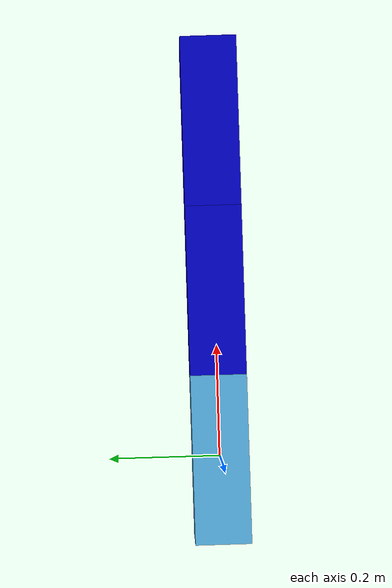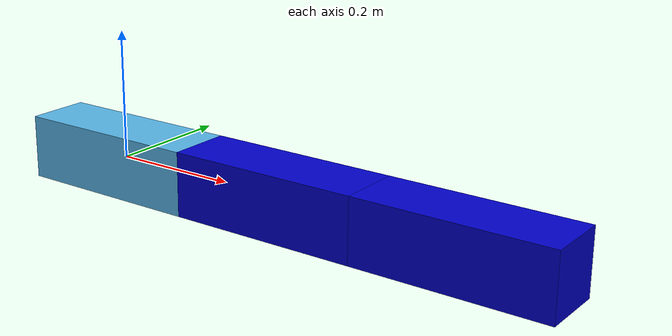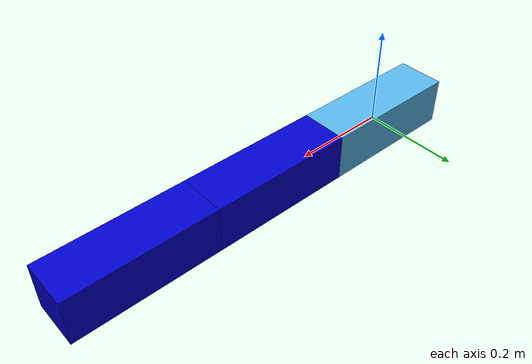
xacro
<?xml version="1.0"?>
<robot xmlns:xacro="http://www.ros.org/wiki/xacro" name="Chain">

<xacro:property name="m" value="1" />
<xacro:property name="l" value="0.3" />
<xacro:property name="b" value="0.1" />
<xacro:property name="h" value="0.1" />
<xacro:macro name="compute_inertia" params="mass x y z">
      <mass value="${mass}"/>
      <inertia ixx="${mass*(y*y + z*z)/3}" ixy="0.0" ixz="0.0" iyy="${mass*(x*x + z*z)/3}" iyz="0.0" izz="${mass*(x*x + y*y)/3}"/>
</xacro:macro>

  <link name="baselink"/>
  <link name="chainbase">
    <visual>
      <geometry>
        <box size="${l} ${b} ${h}"/>
      </geometry>
    </visual>
    <inertial>
		<xacro:compute_inertia mass="${m}" x="${l}" y="${b}" z="${h}"/>
    </inertial>
  </link>
  <link name="link1">
    <visual>
			<origin rpy="0 0 0" xyz="${l/2} 0.0 0"/>
      <geometry>
        <box size="${l} ${b} ${h}"/>
      </geometry>
      <material name="blue">
        <color rgba="0 0 0.8 1"/>
      </material>
    </visual>
    <inertial>
			<origin rpy="0 0 0" xyz="${l/2} 0.0 0"/>
			<xacro:compute_inertia mass="${m}" x="${l}" y="${b}" z="${h}"/>
    </inertial>
  </link>
  <link name="link2">
    <visual>
			<origin rpy="0 0 0" xyz="${l/2} 0.0 0"/>
      <geometry>
        <box size="${l} ${b} ${h}"/>
      </geometry>
      <material name="blue">
        <color rgba="0 0 0.8 1"/>
      </material>
    </visual>
    <inertial>
			<origin rpy="0 0 0" xyz="${l/2} 0.0 0"/>
			<xacro:compute_inertia mass="${m}" x="${l}" y="${b}" z="${h}"/>
    </inertial>
  </link>
 <!-- Joints -->
  <joint name="basetoroot" type="fixed">
    <parent link="baselink"/>
    <child link="chainbase"/>
    <origin rpy="0 0 0" xyz="0 0 0"/>
  </joint>
  <joint name="roottolink1" type="revolute">
    <parent link="chainbase"/>
    <child link="link1"/>
    <origin rpy="0 0 0" xyz="${l/2} 0.0 0"/>
    <axis xyz="0 0 1"/>
		<limit effort="30" velocity="5.0" lower="-5" upper="5" />
  </joint>
  <joint name="link1tolink2" type="revolute">
    <parent link="link1"/>
    <child link="link2"/>
    <origin rpy="0 0 0" xyz="${l} 0.0 0"/>
    <axis xyz="0 0 1"/>
		<limit effort="30" velocity="5.0" lower="-5" upper="5" />
  </joint>
</robot>
